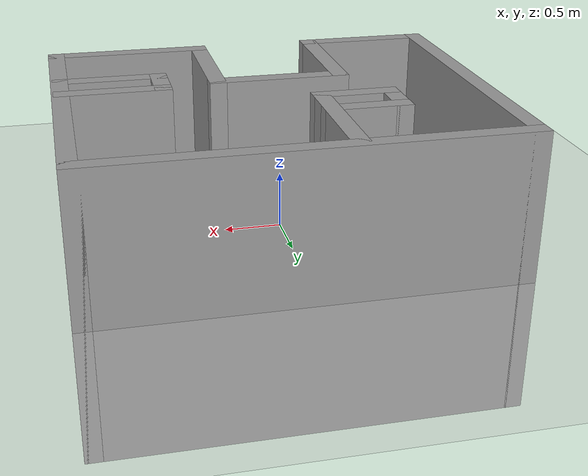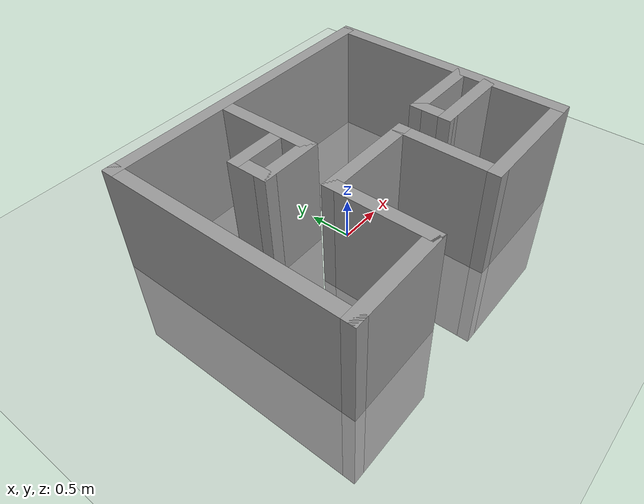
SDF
<sdf version="1.6">
 <world name="default">
  <light name="sun" type="directional">
   <pose>0 0 10 0 -0 0</pose>
   <diffuse>0.8 0.8 0.8 1</diffuse>
   <specular>0.2 0.2 0.2 1</specular>
   <attenuation>
    <range>1000</range>
    <constant>0.9</constant>
    <linear>0.01</linear>
    <quadratic>0.001</quadratic>
   </attenuation>
   <direction>-0.5 0.1 -0.9</direction>
  </light>
  <model name="ground_plane">
   <static>1</static>
   <link name="link">
    <collision name="collision">
     <geometry><plane><normal>0 0 1</normal><size>100 100</size></plane></geometry>
     <surface>
      <contact><collide_bitmask>65535</collide_bitmask></contact>
      <friction><ode><mu>100</mu><mu2>50</mu2></ode></friction>
     </surface>
    </collision>
    <visual name="visual">
     <cast_shadows>0</cast_shadows>
     <geometry><plane><normal>0 0 1</normal><size>100 100</size></plane></geometry>
     <material>
      <script><uri>file://media/materials/scripts/gazebo.material</uri><name>Gazebo/Grey</name></script>
     </material>
    </visual>
   </link>
  </model>
  <gravity>0 0 -9.8</gravity>
  <magnetic_field>6e-06 2.3e-05 -4.2e-05</magnetic_field>
  <atmosphere type="adiabatic"/>
  <physics name="default_physics" default="0" type="ode">
   <max_step_size>0.001</max_step_size>
   <real_time_factor>1</real_time_factor>
   <real_time_update_rate>1000</real_time_update_rate>
  </physics>
  <scene><ambient>0.4 0.4 0.4 1</ambient><background>0.7 0.7 0.7 1</background><shadows>1</shadows></scene>
  <audio><device>default</device></audio>
  <spherical_coordinates>
   <surface_model>EARTH_WGS84</surface_model>
   <latitude_deg>0</latitude_deg>
   <longitude_deg>0</longitude_deg>
   <elevation>0</elevation>
   <heading_deg>0</heading_deg>
  </spherical_coordinates>
  <model name="capstone_map">
   <pose>0.071283 0.023595 0 0 -0 0</pose>
   <link name="Wall_1">
    <collision name="Wall_1_Collision">
     <geometry><box><size>3.7 0.15 2.5</size></box></geometry>
     <pose>0 0 0.05 0 -0 0</pose>
    </collision>
    <visual name="Wall_1_Visual">
     <pose>0 0 0.05 0 -0 0</pose>
     <geometry><box><size>3.7 0.15 2.5</size></box></geometry>
     <material>
      <script><uri>file://media/materials/scripts/gazebo.material</uri><name>Gazebo/Grey</name></script>
      <ambient>1 1 1 1</ambient>
     </material>
     <meta><layer>0</layer></meta>
    </visual>
    <pose>0 1.425 0 0 -0 0</pose>
   </link>
   <link name="Wall_10">
    <collision name="Wall_10_Collision">
     <geometry><box><size>1.25 0.15 2.5</size></box></geometry>
     <pose>0 0 0.05 0 -0 0</pose>
    </collision>
    <visual name="Wall_10_Visual">
     <pose>0 0 0.05 0 -0 0</pose>
     <geometry><box><size>1.25 0.15 2.5</size></box></geometry>
     <material>
      <script><uri>file://media/materials/scripts/gazebo.material</uri><name>Gazebo/Grey</name></script>
      <ambient>1 1 1 1</ambient>
     </material>
     <meta><layer>0</layer></meta>
    </visual>
    <pose>-0.361312 0.800672 0 0 -0 -1.5708</pose>
   </link>
   <link name="Wall_11">
    <collision name="Wall_11_Collision">
     <geometry><box><size>0.75 0.15 2.5</size></box></geometry>
     <pose>0 0 0.05 0 -0 0</pose>
    </collision>
    <visual name="Wall_11_Visual">
     <pose>0 0 0.05 0 -0 0</pose>
     <geometry><box><size>0.75 0.15 2.5</size></box></geometry>
     <material>
      <script><uri>file://media/materials/scripts/gazebo.material</uri><name>Gazebo/Grey</name></script>
      <ambient>1 1 1 1</ambient>
     </material>
     <meta><layer>0</layer></meta>
    </visual>
    <pose>-0.661312 0.250672 0 0 -0 3.14159</pose>
   </link>
   <link name="Wall_14">
    <collision name="Wall_14_Collision">
     <geometry><box><size>0.5 0.15 2.5</size></box></geometry>
     <pose>0 0 0.05 0 -0 0</pose>
    </collision>
    <visual name="Wall_14_Visual">
     <pose>0 0 0.05 0 -0 0</pose>
     <geometry><box><size>0.5 0.15 2.5</size></box></geometry>
     <material>
      <script><uri>file://media/materials/scripts/gazebo.material</uri><name>Gazebo/Grey</name></script>
      <ambient>1 1 1 1</ambient>
     </material>
     <meta><layer>0</layer></meta>
    </visual>
    <pose>-0.961312 0.425672 0 0 -0 1.5708</pose>
   </link>
   <link name="Wall_15">
    <collision name="Wall_15_Collision">
     <geometry><box><size>0.75 0.15 2.5</size></box></geometry>
     <pose>0 0 0.05 0 -0 0</pose>
    </collision>
    <visual name="Wall_15_Visual">
     <pose>0 0 0.05 0 -0 0</pose>
     <geometry><box><size>0.75 0.15 2.5</size></box></geometry>
     <material>
      <script><uri>file://media/materials/scripts/gazebo.material</uri><name>Gazebo/Grey</name></script>
      <ambient>1 1 1 1</ambient>
     </material>
     <meta><layer>0</layer></meta>
    </visual>
    <pose>-0.661312 0.600672 0 0 -0 0</pose>
   </link>
   <link name="Wall_2">
    <collision name="Wall_2_Collision">
     <geometry><box><size>3 0.15 2.5</size></box></geometry>
     <pose>0 0 0.05 0 -0 0</pose>
    </collision>
    <visual name="Wall_2_Visual">
     <pose>0 0 0.05 0 -0 0</pose>
     <geometry><box><size>3 0.15 2.5</size></box></geometry>
     <material>
      <script><uri>file://media/materials/scripts/gazebo.material</uri><name>Gazebo/Grey</name></script>
      <ambient>1 1 1 1</ambient>
     </material>
     <meta><layer>0</layer></meta>
    </visual>
    <pose>1.775 -0 0 0 -0 -1.5708</pose>
   </link>
   <link name="Wall_21">
    <collision name="Wall_21_Collision">
     <geometry><box><size>1 0.15 2.5</size></box></geometry>
     <pose>0 0 0.05 0 -0 0</pose>
    </collision>
    <visual name="Wall_21_Visual">
     <pose>0 0 0.05 0 -0 0</pose>
     <geometry><box><size>1 0.15 2.5</size></box></geometry>
     <material>
      <script><uri>file://media/materials/scripts/gazebo.material</uri><name>Gazebo/Grey</name></script>
      <ambient>1 1 1 1</ambient>
     </material>
     <meta><layer>0</layer></meta>
    </visual>
    <pose>1.33489 -0.227367 0 0 -0 3.14159</pose>
   </link>
   <link name="Wall_22">
    <collision name="Wall_22_Collision">
     <geometry><box><size>0.5 0.15 2.5</size></box></geometry>
     <pose>0 0 0.05 0 -0 0</pose>
    </collision>
    <visual name="Wall_22_Visual">
     <pose>0 0 0.05 0 -0 0</pose>
     <geometry><box><size>0.5 0.15 2.5</size></box></geometry>
     <material>
      <script><uri>file://media/materials/scripts/gazebo.material</uri><name>Gazebo/Grey</name></script>
      <ambient>1 1 1 1</ambient>
     </material>
     <meta><layer>0</layer></meta>
    </visual>
    <pose>0.909893 -0.402367 0 0 -0 -1.5708</pose>
   </link>
   <link name="Wall_23">
    <collision name="Wall_23_Collision">
     <geometry><box><size>1 0.15 2.5</size></box></geometry>
     <pose>0 0 0.05 0 -0 0</pose>
    </collision>
    <visual name="Wall_23_Visual">
     <pose>0 0 0.05 0 -0 0</pose>
     <geometry><box><size>1 0.15 2.5</size></box></geometry>
     <material>
      <script><uri>file://media/materials/scripts/gazebo.material</uri><name>Gazebo/Grey</name></script>
      <ambient>1 1 1 1</ambient>
     </material>
     <meta><layer>0</layer></meta>
    </visual>
    <pose>1.33489 -0.577367 0 0 -0 0</pose>
   </link>
   <link name="Wall_3">
    <collision name="Wall_3_Collision">
     <geometry><box><size>1.5 0.15 2.5</size></box></geometry>
     <pose>0 0 0.05 0 -0 0</pose>
    </collision>
    <visual name="Wall_3_Visual">
     <pose>0 0 0.05 0 -0 0</pose>
     <geometry><box><size>1.5 0.15 2.5</size></box></geometry>
     <material>
      <script><uri>file://media/materials/scripts/gazebo.material</uri><name>Gazebo/Grey</name></script>
      <ambient>1 1 1 1</ambient>
     </material>
     <meta><layer>0</layer></meta>
    </visual>
    <pose>1.1 -1.425 0 0 -0 3.14159</pose>
   </link>
   <link name="Wall_4">
    <collision name="Wall_4_Collision">
     <geometry><box><size>1.25 0.15 2.5</size></box></geometry>
     <pose>0 0 0.05 0 -0 0</pose>
    </collision>
    <visual name="Wall_4_Visual">
     <pose>0 0 0.05 0 -0 0</pose>
     <geometry><box><size>1.25 0.15 2.5</size></box></geometry>
     <material>
      <script><uri>file://media/materials/scripts/gazebo.material</uri><name>Gazebo/Grey</name></script>
      <ambient>1 1 1 1</ambient>
     </material>
     <meta><layer>0</layer></meta>
    </visual>
    <pose>0.425 -0.875 0 0 -0 1.5708</pose>
   </link>
   <link name="Wall_5">
    <collision name="Wall_5_Collision">
     <geometry><box><size>1.25 0.15 2.5</size></box></geometry>
     <pose>0 0 0.05 0 -0 0</pose>
    </collision>
    <visual name="Wall_5_Visual">
     <pose>0 0 0.05 0 -0 0</pose>
     <geometry><box><size>1.25 0.15 2.5</size></box></geometry>
     <material>
      <script><uri>file://media/materials/scripts/gazebo.material</uri><name>Gazebo/Grey</name></script>
      <ambient>1 1 1 1</ambient>
     </material>
     <meta><layer>0</layer></meta>
    </visual>
    <pose>-0.125 -0.325 0 0 -0 3.14159</pose>
   </link>
   <link name="Wall_6">
    <collision name="Wall_6_Collision">
     <geometry><box><size>1.25 0.15 2.5</size></box></geometry>
     <pose>0 0 0.05 0 -0 0</pose>
    </collision>
    <visual name="Wall_6_Visual">
     <pose>0 0 0.05 0 -0 0</pose>
     <geometry><box><size>1.25 0.15 2.5</size></box></geometry>
     <material>
      <script><uri>file://media/materials/scripts/gazebo.material</uri><name>Gazebo/Grey</name></script>
      <ambient>1 1 1 1</ambient>
     </material>
     <meta><layer>0</layer></meta>
    </visual>
    <pose>-0.675 -0.875 0 0 -0 -1.5708</pose>
   </link>
   <link name="Wall_7">
    <collision name="Wall_7_Collision">
     <geometry><box><size>1.25 0.15 2.5</size></box></geometry>
     <pose>0 0 0.05 0 -0 0</pose>
    </collision>
    <visual name="Wall_7_Visual">
     <pose>0 0 0.05 0 -0 0</pose>
     <geometry><box><size>1.25 0.15 2.5</size></box></geometry>
     <material>
      <script><uri>file://media/materials/scripts/gazebo.material</uri><name>Gazebo/Grey</name></script>
      <ambient>1 1 1 1</ambient>
     </material>
     <meta><layer>0</layer></meta>
    </visual>
    <pose>-1.225 -1.425 0 0 -0 3.14159</pose>
   </link>
   <link name="Wall_8">
    <collision name="Wall_8_Collision">
     <geometry><box><size>3 0.15 2.5</size></box></geometry>
     <pose>0 0 0.05 0 -0 0</pose>
    </collision>
    <visual name="Wall_8_Visual">
     <pose>0 0 0.05 0 -0 0</pose>
     <geometry><box><size>3 0.15 2.5</size></box></geometry>
     <material>
      <script><uri>file://media/materials/scripts/gazebo.material</uri><name>Gazebo/Grey</name></script>
      <ambient>1 1 1 1</ambient>
     </material>
     <meta><layer>0</layer></meta>
    </visual>
    <pose>-1.775 -0 0 0 -0 1.5708</pose>
   </link>
   <static>1</static>
  </model>
 </world>
</sdf>
